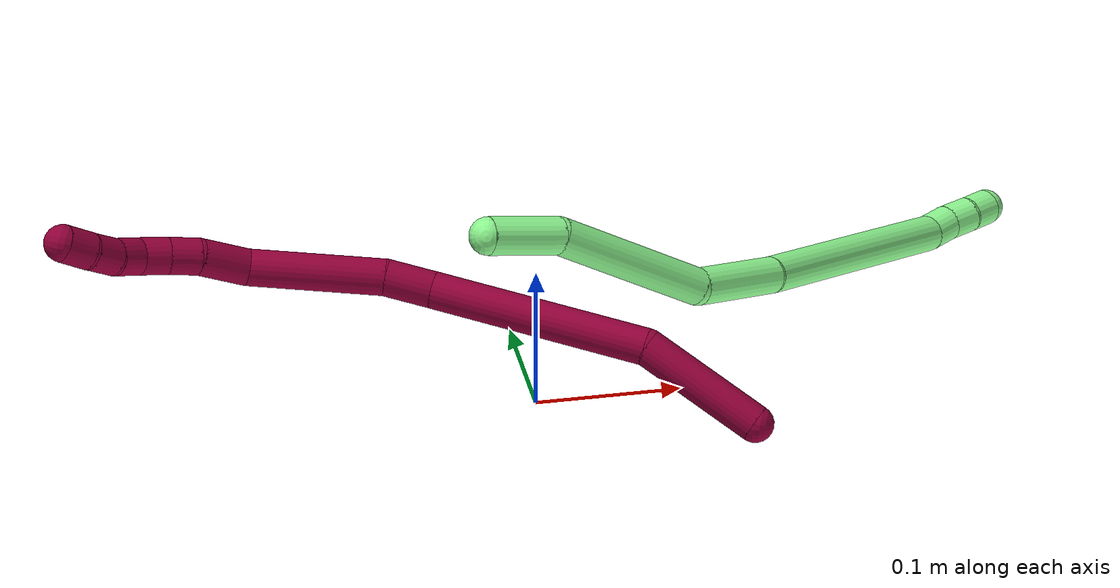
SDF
<sdf version="1.7">
 <world name="default">
  <model name="photoneo_s_sensor">
   <static>1</static>
   <pose>0 0 2 1.57079 1.57079 3.14159</pose>
   <link name="link">
    <inertial><mass>0.1</mass></inertial>
    <sensor name="sensor" type="depth">
     <update_rate>30</update_rate>
     <camera>
      <horizontal_fov>1.22</horizontal_fov>
      <image><width>1920</width><height>1200</height><format>B8G8R8</format></image>
      <clip><near>0.1</near><far>4</far></clip>
      <depth_camera><output>points</output></depth_camera>
     </camera>
     <plugin name="camera_plugin" filename="libgazebo_ros_depth_camera.so">
      <baseline>0.2</baseline>
      <alwaysOn>1</alwaysOn>
      <updateRate>0.0</updateRate>
      <cameraName>camera_ir</cameraName>
      <imageTopicName>/camera/color/image_raw</imageTopicName>
      <cameraInfoTopicName>/camera/color/camera_info</cameraInfoTopicName>
      <depthImageTopicName>/camera/depth/image_raw</depthImageTopicName>
      <depthImageCameraInfoTopicName>/camera/depth/camera_info</depthImageCameraInfoTopicName>
      <pointCloudTopicName>/camera/depth/points</pointCloudTopicName>
      <frameName>fr_optical</frameName>
      <pointCloudCutoff>0.1</pointCloudCutoff>
      <pointCloudCutoffMax>2.0</pointCloudCutoffMax>
      <distortionK1>0</distortionK1>
      <distortionK2>0</distortionK2>
      <distortionK3>0</distortionK3>
      <distortionT1>0</distortionT1>
      <distortionT2>0</distortionT2>
      <CxPrime>0</CxPrime>
      <Cx>0</Cx>
      <Cy>0</Cy>
      <focalLength>0</focalLength>
      <hackBaseline>0</hackBaseline>
     </plugin>
    </sensor>
   </link>
  </model>
  <model name="8">
   <static>0</static>
   <link name="8">
    <collision name="collision-cylinder-e_1_1_4">
     <pose>0.001214 0.018005 -0.039533 -2.71422 0.027941 -0.128591</pose>
     <geometry><cylinder><radius>0.0125</radius><length>0.086914</length></cylinder></geometry>
     <surface>
      <friction><ode><mu>1.16</mu><mu2>1.16</mu2><slip1>0</slip1><slip2>0</slip2></ode></friction>
      <contact><ode><kp>1e+06</kp><kd>1</kd><max_vel>0</max_vel><min_depth>0.001</min_depth></ode></contact>
     </surface>
    </collision>
    <visual name="visual-cylinder-e_1_1_4">
     <pose>0.001214 0.018005 -0.039533 -2.71422 0.027941 -0.128591</pose>
     <geometry><cylinder><radius>0.0125</radius><length>0.086914</length></cylinder></geometry>
     <material><ambient>0.584314 0 0.227451 1</ambient></material>
    </visual>
    <collision name="collision-cylinder-e_2_4_5">
     <pose>0.011508 0.04126 -0.15348 -3.07117 0.121125 -2.08901</pose>
     <geometry><cylinder><radius>0.0125</radius><length>0.150299</length></cylinder></geometry>
     <surface>
      <friction><ode><mu>1.16</mu><mu2>1.16</mu2><slip1>0</slip1><slip2>0</slip2></ode></friction>
      <contact><ode><kp>1e+06</kp><kd>1</kd><max_vel>0</max_vel><min_depth>0.001</min_depth></ode></contact>
     </surface>
    </collision>
    <visual name="visual-cylinder-e_2_4_5">
     <pose>0.011508 0.04126 -0.15348 -3.07117 0.121125 -2.08901</pose>
     <geometry><cylinder><radius>0.0125</radius><length>0.150299</length></cylinder></geometry>
     <material><ambient>0.584314 0 0.227451 1</ambient></material>
    </visual>
    <collision name="collision-cylinder-e_3_5_6">
     <pose>0.018946 0.04769 -0.244231 -3.06943 -0.099934 1.89116</pose>
     <geometry><cylinder><radius>0.0125</radius><length>0.032923</length></cylinder></geometry>
     <surface>
      <friction><ode><mu>1.16</mu><mu2>1.16</mu2><slip1>0</slip1><slip2>0</slip2></ode></friction>
      <contact><ode><kp>1e+06</kp><kd>1</kd><max_vel>0</max_vel><min_depth>0.001</min_depth></ode></contact>
     </surface>
    </collision>
    <visual name="visual-cylinder-e_3_5_6">
     <pose>0.018946 0.04769 -0.244231 -3.06943 -0.099934 1.89116</pose>
     <geometry><cylinder><radius>0.0125</radius><length>0.032923</length></cylinder></geometry>
     <material><ambient>0.584314 0 0.227451 1</ambient></material>
    </visual>
    <collision name="collision-cylinder-e_4_6_7">
     <pose>0.011381 0.043768 -0.305995 3.02972 -0.128849 -1.71197</pose>
     <geometry><cylinder><radius>0.0125</radius><length>0.092189</length></cylinder></geometry>
     <surface>
      <friction><ode><mu>1.16</mu><mu2>1.16</mu2><slip1>0</slip1><slip2>0</slip2></ode></friction>
      <contact><ode><kp>1e+06</kp><kd>1</kd><max_vel>0</max_vel><min_depth>0.001</min_depth></ode></contact>
     </surface>
    </collision>
    <visual name="visual-cylinder-e_4_6_7">
     <pose>0.011381 0.043768 -0.305995 3.02972 -0.128849 -1.71197</pose>
     <geometry><cylinder><radius>0.0125</radius><length>0.092189</length></cylinder></geometry>
     <material><ambient>0.584314 0 0.227451 1</ambient></material>
    </visual>
    <collision name="collision-cylinder-e_5_7_8">
     <pose>-0.004282 0.039383 -0.366112 -3.09271 -0.584926 2.97957</pose>
     <geometry><cylinder><radius>0.0125</radius><length>0.035284</length></cylinder></geometry>
     <surface>
      <friction><ode><mu>1.16</mu><mu2>1.16</mu2><slip1>0</slip1><slip2>0</slip2></ode></friction>
      <contact><ode><kp>1e+06</kp><kd>1</kd><max_vel>0</max_vel><min_depth>0.001</min_depth></ode></contact>
     </surface>
    </collision>
    <visual name="visual-cylinder-e_5_7_8">
     <pose>-0.004282 0.039383 -0.366112 -3.09271 -0.584926 2.97957</pose>
     <geometry><cylinder><radius>0.0125</radius><length>0.035284</length></cylinder></geometry>
     <material><ambient>0.584314 0 0.227451 1</ambient></material>
    </visual>
    <collision name="collision-cylinder-e_6_8_9">
     <pose>-0.018486 0.038575 -0.390237 2.98107 -0.436928 -2.44642</pose>
     <geometry><cylinder><radius>0.0125</radius><length>0.021093</length></cylinder></geometry>
     <surface>
      <friction><ode><mu>1.16</mu><mu2>1.16</mu2><slip1>0</slip1><slip2>0</slip2></ode></friction>
      <contact><ode><kp>1e+06</kp><kd>1</kd><max_vel>0</max_vel><min_depth>0.001</min_depth></ode></contact>
     </surface>
    </collision>
    <visual name="visual-cylinder-e_6_8_9">
     <pose>-0.018486 0.038575 -0.390237 2.98107 -0.436928 -2.44642</pose>
     <geometry><cylinder><radius>0.0125</radius><length>0.021093</length></cylinder></geometry>
     <material><ambient>0.584314 0 0.227451 1</ambient></material>
    </visual>
    <collision name="collision-cylinder-e_7_9_10">
     <pose>-0.027541 0.035155 -0.408372 2.92752 -0.476117 -2.30792</pose>
     <geometry><cylinder><radius>0.0125</radius><length>0.020039</length></cylinder></geometry>
     <surface>
      <friction><ode><mu>1.16</mu><mu2>1.16</mu2><slip1>0</slip1><slip2>0</slip2></ode></friction>
      <contact><ode><kp>1e+06</kp><kd>1</kd><max_vel>0</max_vel><min_depth>0.001</min_depth></ode></contact>
     </surface>
    </collision>
    <visual name="visual-cylinder-e_7_9_10">
     <pose>-0.027541 0.035155 -0.408372 2.92752 -0.476117 -2.30792</pose>
     <geometry><cylinder><radius>0.0125</radius><length>0.020039</length></cylinder></geometry>
     <material><ambient>0.584314 0 0.227451 1</ambient></material>
    </visual>
    <collision name="collision-cylinder-e_8_10_11">
     <pose>-0.040327 0.031749 -0.42316 2.89765 -0.917459 -2.65502</pose>
     <geometry><cylinder><radius>0.0125</radius><length>0.020637</length></cylinder></geometry>
     <surface>
      <friction><ode><mu>1.16</mu><mu2>1.16</mu2><slip1>0</slip1><slip2>0</slip2></ode></friction>
      <contact><ode><kp>1e+06</kp><kd>1</kd><max_vel>0</max_vel><min_depth>0.001</min_depth></ode></contact>
     </surface>
    </collision>
    <visual name="visual-cylinder-e_8_10_11">
     <pose>-0.040327 0.031749 -0.42316 2.89765 -0.917459 -2.65502</pose>
     <geometry><cylinder><radius>0.0125</radius><length>0.020637</length></cylinder></geometry>
     <material><ambient>0.584314 0 0.227451 1</ambient></material>
    </visual>
    <collision name="collision-cylinder-e_9_11_12">
     <pose>-0.056215 0.03084 -0.43584 -3.04986 -0.860239 2.94215</pose>
     <geometry><cylinder><radius>0.0125</radius><length>0.020302</length></cylinder></geometry>
     <surface>
      <friction><ode><mu>1.16</mu><mu2>1.16</mu2><slip1>0</slip1><slip2>0</slip2></ode></friction>
      <contact><ode><kp>1e+06</kp><kd>1</kd><max_vel>0</max_vel><min_depth>0.001</min_depth></ode></contact>
     </surface>
    </collision>
    <visual name="visual-cylinder-e_9_11_12">
     <pose>-0.056215 0.03084 -0.43584 -3.04986 -0.860239 2.94215</pose>
     <geometry><cylinder><radius>0.0125</radius><length>0.020302</length></cylinder></geometry>
     <material><ambient>0.584314 0 0.227451 1</ambient></material>
    </visual>
    <collision name="collision-cylinder-e_10_12_2">
     <pose>-0.07041 0.032502 -0.450169 -3.00602 -0.69425 2.77059</pose>
     <geometry><cylinder><radius>0.0125</radius><length>0.020319</length></cylinder></geometry>
     <surface>
      <friction><ode><mu>1.16</mu><mu2>1.16</mu2><slip1>0</slip1><slip2>0</slip2></ode></friction>
      <contact><ode><kp>1e+06</kp><kd>1</kd><max_vel>0</max_vel><min_depth>0.001</min_depth></ode></contact>
     </surface>
    </collision>
    <visual name="visual-cylinder-e_10_12_2">
     <pose>-0.07041 0.032502 -0.450169 -3.00602 -0.69425 2.77059</pose>
     <geometry><cylinder><radius>0.0125</radius><length>0.020319</length></cylinder></geometry>
     <material><ambient>0.584314 0 0.227451 1</ambient></material>
    </visual>
    <collision name="collision-sphere-2">
     <pose>-0.07691 0.033557 -0.457906 0 -0 0</pose>
     <geometry><sphere><radius>0.0125</radius></sphere></geometry>
     <surface>
      <friction><ode><mu>1.16</mu><mu2>1.16</mu2><slip1>0</slip1><slip2>0</slip2></ode></friction>
      <contact><ode><kp>1e+06</kp><kd>1</kd><max_vel>0</max_vel><min_depth>0.001</min_depth></ode></contact>
     </surface>
    </collision>
    <visual name="visual-sphere-2">
     <pose>-0.07691 0.033557 -0.457906 0 -0 0</pose>
     <geometry><sphere><radius>0.0125</radius></sphere></geometry>
     <material><ambient>0.584314 0 0.227451 1</ambient></material>
    </visual>
    <collision name="collision-sphere-12">
     <pose>-0.063909 0.031447 -0.442433 0 -0 0</pose>
     <geometry><sphere><radius>0.0125</radius></sphere></geometry>
     <surface>
      <friction><ode><mu>1.16</mu><mu2>1.16</mu2><slip1>0</slip1><slip2>0</slip2></ode></friction>
      <contact><ode><kp>1e+06</kp><kd>1</kd><max_vel>0</max_vel><min_depth>0.001</min_depth></ode></contact>
     </surface>
    </collision>
    <visual name="visual-sphere-12">
     <pose>-0.063909 0.031447 -0.442433 0 -0 0</pose>
     <geometry><sphere><radius>0.0125</radius></sphere></geometry>
     <material><ambient>0.584314 0 0.227451 1</ambient></material>
    </visual>
    <collision name="collision-sphere-11">
     <pose>-0.048521 0.030234 -0.429247 0 -0 0</pose>
     <geometry><sphere><radius>0.0125</radius></sphere></geometry>
     <surface>
      <friction><ode><mu>1.16</mu><mu2>1.16</mu2><slip1>0</slip1><slip2>0</slip2></ode></friction>
      <contact><ode><kp>1e+06</kp><kd>1</kd><max_vel>0</max_vel><min_depth>0.001</min_depth></ode></contact>
     </surface>
    </collision>
    <visual name="visual-sphere-11">
     <pose>-0.048521 0.030234 -0.429247 0 -0 0</pose>
     <geometry><sphere><radius>0.0125</radius></sphere></geometry>
     <material><ambient>0.584314 0 0.227451 1</ambient></material>
    </visual>
    <collision name="collision-sphere-10">
     <pose>-0.032133 0.033264 -0.417074 0 -0 0</pose>
     <geometry><sphere><radius>0.0125</radius></sphere></geometry>
     <surface>
      <friction><ode><mu>1.16</mu><mu2>1.16</mu2><slip1>0</slip1><slip2>0</slip2></ode></friction>
      <contact><ode><kp>1e+06</kp><kd>1</kd><max_vel>0</max_vel><min_depth>0.001</min_depth></ode></contact>
     </surface>
    </collision>
    <visual name="visual-sphere-10">
     <pose>-0.032133 0.033264 -0.417074 0 -0 0</pose>
     <geometry><sphere><radius>0.0125</radius></sphere></geometry>
     <material><ambient>0.584314 0 0.227451 1</ambient></material>
    </visual>
    <collision name="collision-sphere-9">
     <pose>-0.022949 0.037047 -0.39967 0 -0 0</pose>
     <geometry><sphere><radius>0.0125</radius></sphere></geometry>
     <surface>
      <friction><ode><mu>1.16</mu><mu2>1.16</mu2><slip1>0</slip1><slip2>0</slip2></ode></friction>
      <contact><ode><kp>1e+06</kp><kd>1</kd><max_vel>0</max_vel><min_depth>0.001</min_depth></ode></contact>
     </surface>
    </collision>
    <visual name="visual-sphere-9">
     <pose>-0.022949 0.037047 -0.39967 0 -0 0</pose>
     <geometry><sphere><radius>0.0125</radius></sphere></geometry>
     <material><ambient>0.584314 0 0.227451 1</ambient></material>
    </visual>
    <collision name="collision-sphere-4">
     <pose>0.002428 0.03601 -0.079066 0 -0 0</pose>
     <geometry><sphere><radius>0.0125</radius></sphere></geometry>
     <surface>
      <friction><ode><mu>1.16</mu><mu2>1.16</mu2><slip1>0</slip1><slip2>0</slip2></ode></friction>
      <contact><ode><kp>1e+06</kp><kd>1</kd><max_vel>0</max_vel><min_depth>0.001</min_depth></ode></contact>
     </surface>
    </collision>
    <visual name="visual-sphere-4">
     <pose>0.002428 0.03601 -0.079066 0 -0 0</pose>
     <geometry><sphere><radius>0.0125</radius></sphere></geometry>
     <material><ambient>0.584314 0 0.227451 1</ambient></material>
    </visual>
    <collision name="collision-sphere-1">
     <geometry><sphere><radius>0.0125</radius></sphere></geometry>
     <surface>
      <friction><ode><mu>1.16</mu><mu2>1.16</mu2><slip1>0</slip1><slip2>0</slip2></ode></friction>
      <contact><ode><kp>1e+06</kp><kd>1</kd><max_vel>0</max_vel><min_depth>0.001</min_depth></ode></contact>
     </surface>
    </collision>
    <visual name="visual-sphere-1">
     <geometry><sphere><radius>0.0125</radius></sphere></geometry>
     <material><ambient>0.584314 0 0.227451 1</ambient></material>
    </visual>
    <collision name="collision-sphere-8">
     <pose>-0.014023 0.040102 -0.380804 0 -0 0</pose>
     <geometry><sphere><radius>0.0125</radius></sphere></geometry>
     <surface>
      <friction><ode><mu>1.16</mu><mu2>1.16</mu2><slip1>0</slip1><slip2>0</slip2></ode></friction>
      <contact><ode><kp>1e+06</kp><kd>1</kd><max_vel>0</max_vel><min_depth>0.001</min_depth></ode></contact>
     </surface>
    </collision>
    <visual name="visual-sphere-8">
     <pose>-0.014023 0.040102 -0.380804 0 -0 0</pose>
     <geometry><sphere><radius>0.0125</radius></sphere></geometry>
     <material><ambient>0.584314 0 0.227451 1</ambient></material>
    </visual>
    <collision name="collision-sphere-5">
     <pose>0.020589 0.046509 -0.227894 0 -0 0</pose>
     <geometry><sphere><radius>0.0125</radius></sphere></geometry>
     <surface>
      <friction><ode><mu>1.16</mu><mu2>1.16</mu2><slip1>0</slip1><slip2>0</slip2></ode></friction>
      <contact><ode><kp>1e+06</kp><kd>1</kd><max_vel>0</max_vel><min_depth>0.001</min_depth></ode></contact>
     </surface>
    </collision>
    <visual name="visual-sphere-5">
     <pose>0.020589 0.046509 -0.227894 0 -0 0</pose>
     <geometry><sphere><radius>0.0125</radius></sphere></geometry>
     <material><ambient>0.584314 0 0.227451 1</ambient></material>
    </visual>
    <collision name="collision-sphere-6">
     <pose>0.017304 0.048871 -0.260568 0 -0 0</pose>
     <geometry><sphere><radius>0.0125</radius></sphere></geometry>
     <surface>
      <friction><ode><mu>1.16</mu><mu2>1.16</mu2><slip1>0</slip1><slip2>0</slip2></ode></friction>
      <contact><ode><kp>1e+06</kp><kd>1</kd><max_vel>0</max_vel><min_depth>0.001</min_depth></ode></contact>
     </surface>
    </collision>
    <visual name="visual-sphere-6">
     <pose>0.017304 0.048871 -0.260568 0 -0 0</pose>
     <geometry><sphere><radius>0.0125</radius></sphere></geometry>
     <material><ambient>0.584314 0 0.227451 1</ambient></material>
    </visual>
    <collision name="collision-sphere-7">
     <pose>0.005458 0.038664 -0.351421 0 -0 0</pose>
     <geometry><sphere><radius>0.0125</radius></sphere></geometry>
     <surface>
      <friction><ode><mu>1.16</mu><mu2>1.16</mu2><slip1>0</slip1><slip2>0</slip2></ode></friction>
      <contact><ode><kp>1e+06</kp><kd>1</kd><max_vel>0</max_vel><min_depth>0.001</min_depth></ode></contact>
     </surface>
    </collision>
    <visual name="visual-sphere-7">
     <pose>0.005458 0.038664 -0.351421 0 -0 0</pose>
     <geometry><sphere><radius>0.0125</radius></sphere></geometry>
     <material><ambient>0.584314 0 0.227451 1</ambient></material>
    </visual>
    <inertial>
     <pose>-0.001978 0.036441 -0.23763 0 -0 0</pose>
     <mass>0.5</mass>
     <inertia>
      <ixx>-0.000431</ixx>
      <ixy>0</ixy>
      <ixz>0</ixz>
      <iyy>-0.000202</iyy>
      <iyz>0</iyz>
      <izz>-9.2e-05</izz>
     </inertia>
    </inertial>
   </link>
   <pose>0.124777 -0.112696 0.036433 1.69788 0.514664 1.26306</pose>
  </model>
  <model name="13">
   <static>0</static>
   <link name="13">
    <collision name="collision-cylinder-e_1_1_4">
     <pose>0.014979 0.015853 0.013496 -0.865515 0.623665 -0.295654</pose>
     <geometry><cylinder><radius>0.0125</radius><length>0.051296</length></cylinder></geometry>
     <surface>
      <friction><ode><mu>1.16</mu><mu2>1.16</mu2><slip1>0</slip1><slip2>0</slip2></ode></friction>
      <contact><ode><kp>1e+06</kp><kd>1</kd><max_vel>0</max_vel><min_depth>0.001</min_depth></ode></contact>
     </surface>
    </collision>
    <visual name="visual-cylinder-e_1_1_4">
     <pose>0.014979 0.015853 0.013496 -0.865515 0.623665 -0.295654</pose>
     <geometry><cylinder><radius>0.0125</radius><length>0.051296</length></cylinder></geometry>
     <material><ambient>0.564706 0.984314 0.572549 1</ambient></material>
    </visual>
    <collision name="collision-cylinder-e_2_4_5">
     <pose>0.047483 0.075374 0.060422 -0.91743 0.308496 -0.15327</pose>
     <geometry><cylinder><radius>0.0125</radius><length>0.115439</length></cylinder></geometry>
     <surface>
      <friction><ode><mu>1.16</mu><mu2>1.16</mu2><slip1>0</slip1><slip2>0</slip2></ode></friction>
      <contact><ode><kp>1e+06</kp><kd>1</kd><max_vel>0</max_vel><min_depth>0.001</min_depth></ode></contact>
     </surface>
    </collision>
    <visual name="visual-cylinder-e_2_4_5">
     <pose>0.047483 0.075374 0.060422 -0.91743 0.308496 -0.15327</pose>
     <geometry><cylinder><radius>0.0125</radius><length>0.115439</length></cylinder></geometry>
     <material><ambient>0.564706 0.984314 0.572549 1</ambient></material>
    </visual>
    <collision name="collision-cylinder-e_3_5_6">
     <pose>0.083716 0.134191 0.120256 -0.520882 0.551045 -0.150398</pose>
     <geometry><cylinder><radius>0.0125</radius><length>0.071462</length></cylinder></geometry>
     <surface>
      <friction><ode><mu>1.16</mu><mu2>1.16</mu2><slip1>0</slip1><slip2>0</slip2></ode></friction>
      <contact><ode><kp>1e+06</kp><kd>1</kd><max_vel>0</max_vel><min_depth>0.001</min_depth></ode></contact>
     </surface>
    </collision>
    <visual name="visual-cylinder-e_3_5_6">
     <pose>0.083716 0.134191 0.120256 -0.520882 0.551045 -0.150398</pose>
     <geometry><cylinder><radius>0.0125</radius><length>0.071462</length></cylinder></geometry>
     <material><ambient>0.564706 0.984314 0.572549 1</ambient></material>
    </visual>
    <collision name="collision-cylinder-e_4_6_7">
     <pose>0.149623 0.18096 0.228646 -0.368096 0.492912 -0.093593</pose>
     <geometry><cylinder><radius>0.0125</radius><length>0.19949</length></cylinder></geometry>
     <surface>
      <friction><ode><mu>1.16</mu><mu2>1.16</mu2><slip1>0</slip1><slip2>0</slip2></ode></friction>
      <contact><ode><kp>1e+06</kp><kd>1</kd><max_vel>0</max_vel><min_depth>0.001</min_depth></ode></contact>
     </surface>
    </collision>
    <visual name="visual-cylinder-e_4_6_7">
     <pose>0.149623 0.18096 0.228646 -0.368096 0.492912 -0.093593</pose>
     <geometry><cylinder><radius>0.0125</radius><length>0.19949</length></cylinder></geometry>
     <material><ambient>0.564706 0.984314 0.572549 1</ambient></material>
    </visual>
    <collision name="collision-cylinder-e_5_7_8">
     <pose>0.204135 0.215105 0.317781 -0.339607 0.767356 -0.138206</pose>
     <geometry><cylinder><radius>0.0125</radius><length>0.02107</length></cylinder></geometry>
     <surface>
      <friction><ode><mu>1.16</mu><mu2>1.16</mu2><slip1>0</slip1><slip2>0</slip2></ode></friction>
      <contact><ode><kp>1e+06</kp><kd>1</kd><max_vel>0</max_vel><min_depth>0.001</min_depth></ode></contact>
     </surface>
    </collision>
    <visual name="visual-cylinder-e_5_7_8">
     <pose>0.204135 0.215105 0.317781 -0.339607 0.767356 -0.138206</pose>
     <geometry><cylinder><radius>0.0125</radius><length>0.02107</length></cylinder></geometry>
     <material><ambient>0.564706 0.984314 0.572549 1</ambient></material>
    </visual>
    <collision name="collision-cylinder-e_6_8_9">
     <pose>0.218894 0.221239 0.331243 -0.519106 0.797255 -0.222755</pose>
     <geometry><cylinder><radius>0.0125</radius><length>0.020814</length></cylinder></geometry>
     <surface>
      <friction><ode><mu>1.16</mu><mu2>1.16</mu2><slip1>0</slip1><slip2>0</slip2></ode></friction>
      <contact><ode><kp>1e+06</kp><kd>1</kd><max_vel>0</max_vel><min_depth>0.001</min_depth></ode></contact>
     </surface>
    </collision>
    <visual name="visual-cylinder-e_6_8_9">
     <pose>0.218894 0.221239 0.331243 -0.519106 0.797255 -0.222755</pose>
     <geometry><cylinder><radius>0.0125</radius><length>0.020814</length></cylinder></geometry>
     <material><ambient>0.564706 0.984314 0.572549 1</ambient></material>
    </visual>
    <collision name="collision-cylinder-e_7_9_2">
     <pose>0.232876 0.227901 0.344787 -0.399752 0.69433 -0.146333</pose>
     <geometry><cylinder><radius>0.0125</radius><length>0.020428</length></cylinder></geometry>
     <surface>
      <friction><ode><mu>1.16</mu><mu2>1.16</mu2><slip1>0</slip1><slip2>0</slip2></ode></friction>
      <contact><ode><kp>1e+06</kp><kd>1</kd><max_vel>0</max_vel><min_depth>0.001</min_depth></ode></contact>
     </surface>
    </collision>
    <visual name="visual-cylinder-e_7_9_2">
     <pose>0.232876 0.227901 0.344787 -0.399752 0.69433 -0.146333</pose>
     <geometry><cylinder><radius>0.0125</radius><length>0.020428</length></cylinder></geometry>
     <material><ambient>0.564706 0.984314 0.572549 1</ambient></material>
    </visual>
    <collision name="collision-sphere-2">
     <pose>0.239411 0.230956 0.352018 0 -0 0</pose>
     <geometry><sphere><radius>0.0125</radius></sphere></geometry>
     <surface>
      <friction><ode><mu>1.16</mu><mu2>1.16</mu2><slip1>0</slip1><slip2>0</slip2></ode></friction>
      <contact><ode><kp>1e+06</kp><kd>1</kd><max_vel>0</max_vel><min_depth>0.001</min_depth></ode></contact>
     </surface>
    </collision>
    <visual name="visual-sphere-2">
     <pose>0.239411 0.230956 0.352018 0 -0 0</pose>
     <geometry><sphere><radius>0.0125</radius></sphere></geometry>
     <material><ambient>0.564706 0.984314 0.572549 1</ambient></material>
    </visual>
    <collision name="collision-sphere-9">
     <pose>0.22634 0.224846 0.337557 0 -0 0</pose>
     <geometry><sphere><radius>0.0125</radius></sphere></geometry>
     <surface>
      <friction><ode><mu>1.16</mu><mu2>1.16</mu2><slip1>0</slip1><slip2>0</slip2></ode></friction>
      <contact><ode><kp>1e+06</kp><kd>1</kd><max_vel>0</max_vel><min_depth>0.001</min_depth></ode></contact>
     </surface>
    </collision>
    <visual name="visual-sphere-9">
     <pose>0.22634 0.224846 0.337557 0 -0 0</pose>
     <geometry><sphere><radius>0.0125</radius></sphere></geometry>
     <material><ambient>0.564706 0.984314 0.572549 1</ambient></material>
    </visual>
    <collision name="collision-sphere-4">
     <pose>0.029958 0.031705 0.026993 0 -0 0</pose>
     <geometry><sphere><radius>0.0125</radius></sphere></geometry>
     <surface>
      <friction><ode><mu>1.16</mu><mu2>1.16</mu2><slip1>0</slip1><slip2>0</slip2></ode></friction>
      <contact><ode><kp>1e+06</kp><kd>1</kd><max_vel>0</max_vel><min_depth>0.001</min_depth></ode></contact>
     </surface>
    </collision>
    <visual name="visual-sphere-4">
     <pose>0.029958 0.031705 0.026993 0 -0 0</pose>
     <geometry><sphere><radius>0.0125</radius></sphere></geometry>
     <material><ambient>0.564706 0.984314 0.572549 1</ambient></material>
    </visual>
    <collision name="collision-sphere-1">
     <geometry><sphere><radius>0.0125</radius></sphere></geometry>
     <surface>
      <friction><ode><mu>1.16</mu><mu2>1.16</mu2><slip1>0</slip1><slip2>0</slip2></ode></friction>
      <contact><ode><kp>1e+06</kp><kd>1</kd><max_vel>0</max_vel><min_depth>0.001</min_depth></ode></contact>
     </surface>
    </collision>
    <visual name="visual-sphere-1">
     <geometry><sphere><radius>0.0125</radius></sphere></geometry>
     <material><ambient>0.564706 0.984314 0.572549 1</ambient></material>
    </visual>
    <collision name="collision-sphere-8">
     <pose>0.211449 0.217631 0.32493 0 -0 0</pose>
     <geometry><sphere><radius>0.0125</radius></sphere></geometry>
     <surface>
      <friction><ode><mu>1.16</mu><mu2>1.16</mu2><slip1>0</slip1><slip2>0</slip2></ode></friction>
      <contact><ode><kp>1e+06</kp><kd>1</kd><max_vel>0</max_vel><min_depth>0.001</min_depth></ode></contact>
     </surface>
    </collision>
    <visual name="visual-sphere-8">
     <pose>0.211449 0.217631 0.32493 0 -0 0</pose>
     <geometry><sphere><radius>0.0125</radius></sphere></geometry>
     <material><ambient>0.564706 0.984314 0.572549 1</ambient></material>
    </visual>
    <collision name="collision-sphere-5">
     <pose>0.065008 0.119042 0.093851 0 -0 0</pose>
     <geometry><sphere><radius>0.0125</radius></sphere></geometry>
     <surface>
      <friction><ode><mu>1.16</mu><mu2>1.16</mu2><slip1>0</slip1><slip2>0</slip2></ode></friction>
      <contact><ode><kp>1e+06</kp><kd>1</kd><max_vel>0</max_vel><min_depth>0.001</min_depth></ode></contact>
     </surface>
    </collision>
    <visual name="visual-sphere-5">
     <pose>0.065008 0.119042 0.093851 0 -0 0</pose>
     <geometry><sphere><radius>0.0125</radius></sphere></geometry>
     <material><ambient>0.564706 0.984314 0.572549 1</ambient></material>
    </visual>
    <collision name="collision-sphere-6">
     <pose>0.102424 0.14934 0.146661 0 -0 0</pose>
     <geometry><sphere><radius>0.0125</radius></sphere></geometry>
     <surface>
      <friction><ode><mu>1.16</mu><mu2>1.16</mu2><slip1>0</slip1><slip2>0</slip2></ode></friction>
      <contact><ode><kp>1e+06</kp><kd>1</kd><max_vel>0</max_vel><min_depth>0.001</min_depth></ode></contact>
     </surface>
    </collision>
    <visual name="visual-sphere-6">
     <pose>0.102424 0.14934 0.146661 0 -0 0</pose>
     <geometry><sphere><radius>0.0125</radius></sphere></geometry>
     <material><ambient>0.564706 0.984314 0.572549 1</ambient></material>
    </visual>
    <collision name="collision-sphere-7">
     <pose>0.196821 0.21258 0.310631 0 -0 0</pose>
     <geometry><sphere><radius>0.0125</radius></sphere></geometry>
     <surface>
      <friction><ode><mu>1.16</mu><mu2>1.16</mu2><slip1>0</slip1><slip2>0</slip2></ode></friction>
      <contact><ode><kp>1e+06</kp><kd>1</kd><max_vel>0</max_vel><min_depth>0.001</min_depth></ode></contact>
     </surface>
    </collision>
    <visual name="visual-sphere-7">
     <pose>0.196821 0.21258 0.310631 0 -0 0</pose>
     <geometry><sphere><radius>0.0125</radius></sphere></geometry>
     <material><ambient>0.564706 0.984314 0.572549 1</ambient></material>
    </visual>
    <inertial>
     <pose>0.11139 0.137993 0.165015 0 -0 0</pose>
     <mass>0.5</mass>
     <inertia>
      <ixx>0.00069</ixx>
      <ixy>0</ixy>
      <ixz>0</ixz>
      <iyy>0.000697</iyy>
      <iyz>0</iyz>
      <izz>-0.000694</izz>
     </inertia>
    </inertial>
   </link>
   <pose>-0.04636 -0.082112 0.177509 -2.22328 -0.722834 0.207838</pose>
  </model>
 </world>
</sdf>
